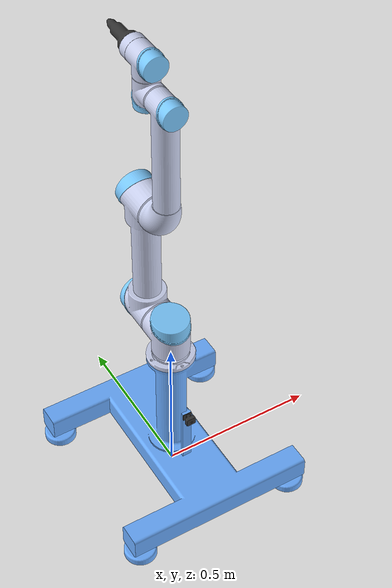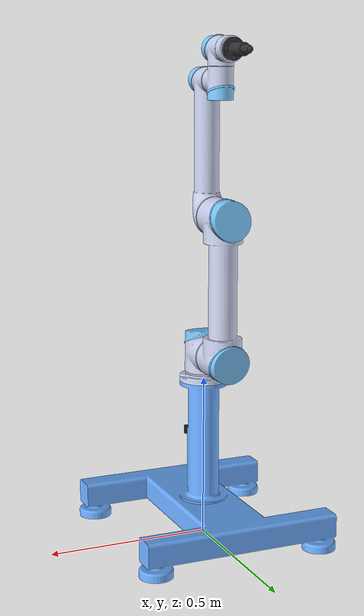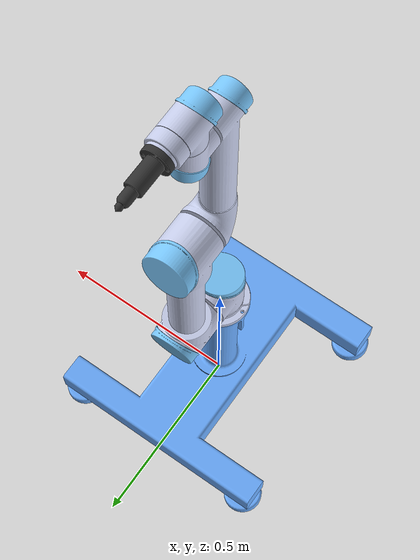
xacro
<?xml version="1.0" ?>
<robot
  name="robot_arm" xmlns:xacro="http://ros.org/wiki/xacro">

  <!-- Gazebo Color Plugins -->
  <xacro:macro name="body_color">
    <visual>
      <material>
        <ambient>0.796078431372549 0.819607843137255 0.933333333333333 1</ambient>
        <diffuse>0.796078431372549 0.819607843137255 0.933333333333333 1</diffuse>
        <specular>0.1 0.1 0.1 1</specular>
        <emissive>0 0 0 0</emissive>
      </material>
    </visual>
  </xacro:macro>
  <xacro:macro name="cap_color">
    <visual>
      <material>
        <ambient>0.482352941176471 0.792156862745098 1 1</ambient>
        <diffuse>0.482352941176471 0.792156862745098 1 1</diffuse>
        <specular>0.1 0.1 0.1 1</specular>
        <emissive>0 0 0 0</emissive>
      </material>
    </visual>
  </xacro:macro>
  <xacro:macro name="base_color">
    <visual>
      <material>
        <ambient>0.41569 0.67451 1 1</ambient>
        <diffuse>0.41569 0.67451 1 1</diffuse>
        <specular>0.1 0.1 0.1 1</specular>
        <emissive>0 0 0 0</emissive>
      </material>
    </visual>
  </xacro:macro>
  <xacro:macro name="tool_color">
    <visual>
      <material>
        <ambient>0.19608 0.19608 0.19608 1</ambient>
        <diffuse>0.19608 0.19608 0.19608 1</diffuse>
        <specular>0.1 0.1 0.1 1</specular>
        <emissive>0 0 0 0</emissive>
      </material>
    </visual>
  </xacro:macro>

  <!-- World Link for Fixed Base -->
  <link name="world" />

  <link
    name="base_link">
    <inertial>
      <origin
        xyz="2.9549E-17 -0.00030197 0.11134"
        rpy="0 0 0" />
      <mass
        value="17.843" />
      <inertia
        ixx="0.87104"
        ixy="-3.2142E-07"
        ixz="-9.442E-18"
        iyy="0.48766"
        iyz="0.00055476"
        izz="0.98951" />
    </inertial>
    <visual>
      <origin
        xyz="0 0 0"
        rpy="0 0 0" />
      <geometry>
        <mesh
          filename="package://project_two/meshes/base_link.STL" />
      </geometry>
      <material
        name="">
        <color
          rgba="0.41569 0.67451 1 1" />
      </material>
    </visual>
    <collision>
      <origin
        xyz="0 0 0"
        rpy="0 0 0" />
      <geometry>
        <mesh
          filename="package://project_two/meshes/base_link.STL" />
      </geometry>
    </collision>
  </link>

  <!-- World Joint For Fixed Base -->
  <joint name="fixed_base" type="fixed">
    <parent link="world" />
    <child link="base_link" />
  </joint>

  <joint
    name="camera_joint"
    type="fixed">
    <origin
      xyz="0 -0.120050000000001 0.2983"
      rpy="1.5707963267949 0 0" />
    <parent
      link="base_link" />
    <child
      link="camera_link" />
    <axis
      xyz="0 0 0" />
  </joint>

  <link
    name="camera_link">
    <inertial>
      <origin
        xyz="-3.8492E-19 0.0043066 -0.0086877"
        rpy="0 0 0" />
      <mass
        value="0.011" />
      <inertia
        ixx="1.206E-06"
        ixy="1.0009E-22"
        ixz="-5.0667E-23"
        iyy="1.4269E-06"
        iyz="8.5819E-08"
        izz="1.3248E-06" />
    </inertial>
    <visual>
      <origin
        xyz="0 0 0"
        rpy="0 0 0" />
      <geometry>
        <mesh
          filename="package://project_two/meshes/camera_link.STL" />
      </geometry>
      <material
        name="">
        <color
          rgba="0.19608 0.19608 0.19608 1" />
      </material>
    </visual>
    <collision>
      <origin
        xyz="0 0 0"
        rpy="0 0 0" />
      <geometry>
        <mesh
          filename="package://project_two/meshes/camera_link.STL" />
      </geometry>
    </collision>
  </link>

  <!-- Dummy link to correct Image Reference Frame for Camera -->
  <link name="camera_link_optical" />
  <joint name="camera_optical_joint" type="fixed">
      <origin xyz="0 0 0" rpy="0 -1.5707 -1.5707963267949" />
      <parent link="camera_link" />
      <child link="camera_link_optical" />
  </joint>

  <link
    name="link_0">
    <inertial>
      <origin
        xyz="0.00081893 -0.00081893 0.50768"
        rpy="0 0 0" />
      <mass
        value="0.36506" />
      <inertia
        ixx="0.00051381"
        ixy="-1.2538E-05"
        ixz="3.4706E-08"
        iyy="0.00051381"
        iyz="-3.4708E-08"
        izz="0.00083314" />
    </inertial>
    <visual>
      <origin
        xyz="0 0 0"
        rpy="0 0 0" />
      <geometry>
        <mesh
          filename="package://project_two/meshes/link_0.STL" />
      </geometry>
      <material
        name="">
        <color
          rgba="0.79216 0.81961 0.93333 1" />
      </material>
    </visual>
    <collision>
      <origin
        xyz="0 0 0"
        rpy="0 0 0" />
      <geometry>
        <mesh
          filename="package://project_two/meshes/link_0.STL" />
      </geometry>
    </collision>
  </link>
  <joint
    name="joint_0"
    type="fixed">
    <origin
      xyz="0 0 0"
      rpy="0 0 0" />
    <parent
      link="base_link" />
    <child
      link="link_0" />
    <axis
      xyz="0 0 0" />
  </joint>
  <link
    name="link_1">
    <inertial>
      <origin
        xyz="-1.7916E-08 0.014728 0.57467"
        rpy="0 0 0" />
      <mass
        value="1.2175" />
      <inertia
        ixx="0.0025526"
        ixy="5.0045E-09"
        ixz="5.1533E-10"
        iyy="0.002109"
        iyz="-0.00029785"
        izz="0.0026631" />
    </inertial>
    <visual>
      <origin
        xyz="0 0 0"
        rpy="0 0 0" />
      <geometry>
        <mesh
          filename="package://project_two/meshes/link_1.STL" />
      </geometry>
      <material
        name="">
        <color
          rgba="0.79608 0.81961 0.93333 1" />
      </material>
    </visual>
    <collision>
      <origin
        xyz="0 0 0"
        rpy="0 0 0" />
      <geometry>
        <mesh
          filename="package://project_two/meshes/link_1.STL" />
      </geometry>
    </collision>
  </link>
  <joint
    name="joint_1"
    type="revolute">
    <origin
      xyz="0 0 0"
      rpy="0 0 0" />
    <parent
      link="link_0" />
    <child
      link="link_1" />
    <axis
      xyz="0 0 1" />
    <limit
      lower="-3.1416"
      upper="3.1416"
      effort="0"
      velocity="0" />

      <!-- Added Joint Dynamics to Prevent Separation -->
      <dynamics damping="0.7" friction="1.0"/>

  </joint>
  <link
    name="link_1_cap">
    <inertial>
      <origin
        xyz="1.423E-07 -0.0080668 0.63232"
        rpy="0 0 0" />
      <mass
        value="0.33002" />
      <inertia
        ixx="0.00031386"
        ixy="1.3984E-09"
        ixz="2.283E-10"
        iyy="0.00033534"
        iyz="-7.3964E-05"
        izz="0.00054175" />
    </inertial>
    <visual>
      <origin
        xyz="0 0 0"
        rpy="0 0 0" />
      <geometry>
        <mesh
          filename="package://project_two/meshes/link_1_cap.STL" />
      </geometry>
      <material
        name="">
        <color
          rgba="0.48235 0.79216 1 1" />
      </material>
    </visual>
    <collision>
      <origin
        xyz="0 0 0"
        rpy="0 0 0" />
      <geometry>
        <mesh
          filename="package://project_two/meshes/link_1_cap.STL" />
      </geometry>
    </collision>
  </link>
  <joint
    name="link_1_cap_joint"
    type="prismatic">
    <origin
      xyz="0 0 0"
      rpy="0 0 0" />
    <parent
      link="link_1" />
    <child
      link="link_1_cap" />
    <axis
      xyz="0 0 1" />
    <limit
      lower="0"
      upper="0"
      effort="0"
      velocity="0" />
  </joint>
  <link
    name="link_2">
    <inertial>
      <origin
        xyz="5.2822E-09 -0.21211 0.12961"
        rpy="0 0 0" />
      <mass
        value="4.0348" />
      <inertia
        ixx="0.112"
        ixy="1.4951E-08"
        ixz="-4.4437E-10"
        iyy="0.0058097"
        iyz="1.8719E-05"
        izz="0.11215" />
    </inertial>
    <visual>
      <origin
        xyz="0 0 0"
        rpy="0 0 0" />
      <geometry>
        <mesh
          filename="package://project_two/meshes/link_2.STL" />
      </geometry>
      <material
        name="">
        <color
          rgba="0.79216 0.81961 0.93333 1" />
      </material>
    </visual>
    <collision>
      <origin
        xyz="0 0 0"
        rpy="0 0 0" />
      <geometry>
        <mesh
          filename="package://project_two/meshes/link_2.STL" />
      </geometry>
    </collision>
  </link>
  <joint
    name="joint_2"
    type="revolute">
    <origin
      xyz="0 0 0.58365"
      rpy="-1.57079632679489 0 0" />
    <parent
      link="link_1" />
    <child
      link="link_2" />
    <axis
      xyz="0 0 1" />
    <limit
      lower="-3.1416"
      upper="3.1416"
      effort="0"
      velocity="0" />

      <!-- Added Joint Dynamics to Prevent Separation -->
      <dynamics damping="0.7" friction="1.0"/>
  </joint>
  <link
    name="link_2_cap_1">
    <inertial>
      <origin
        xyz="-1.423E-07 0.0080668 0.18367"
        rpy="0 0 0" />
      <mass
        value="0.33002" />
      <inertia
        ixx="0.00031386"
        ixy="1.3984E-09"
        ixz="-2.283E-10"
        iyy="0.00033534"
        iyz="7.3964E-05"
        izz="0.00054175" />
    </inertial>
    <visual>
      <origin
        xyz="0 0 0"
        rpy="0 0 0" />
      <geometry>
        <mesh
          filename="package://project_two/meshes/link_2_cap_1.STL" />
      </geometry>
      <material
        name="">
        <color
          rgba="0.48235 0.79216 1 1" />
      </material>
    </visual>
    <collision>
      <origin
        xyz="0 0 0"
        rpy="0 0 0" />
      <geometry>
        <mesh
          filename="package://project_two/meshes/link_2_cap_1.STL" />
      </geometry>
    </collision>
  </link>
  <joint
    name="link_2_cap_1_joint"
    type="prismatic">
    <origin
      xyz="0 0 0"
      rpy="0 0 0" />
    <parent
      link="link_2" />
    <child
      link="link_2_cap_1" />
    <axis
      xyz="0 0 1" />
    <limit
      lower="0"
      upper="0"
      effort="0"
      velocity="0" />
  </joint>
  <link
    name="link_2_cap_2">
    <inertial>
      <origin
        xyz="1.423E-07 -0.43307 0.18367"
        rpy="0 0 0" />
      <mass
        value="0.33002" />
      <inertia
        ixx="0.00031386"
        ixy="1.3984E-09"
        ixz="2.283E-10"
        iyy="0.00033534"
        iyz="-7.3964E-05"
        izz="0.00054175" />
    </inertial>
    <visual>
      <origin
        xyz="0 0 0"
        rpy="0 0 0" />
      <geometry>
        <mesh
          filename="package://project_two/meshes/link_2_cap_2.STL" />
      </geometry>
      <material
        name="">
        <color
          rgba="0.48235 0.79216 1 1" />
      </material>
    </visual>
    <collision>
      <origin
        xyz="0 0 0"
        rpy="0 0 0" />
      <geometry>
        <mesh
          filename="package://project_two/meshes/link_2_cap_2.STL" />
      </geometry>
    </collision>
  </link>
  <joint
    name="link_2_cap_2_joint"
    type="prismatic">
    <origin
      xyz="0 0 0"
      rpy="0 0 0" />
    <parent
      link="link_2" />
    <child
      link="link_2_cap_2" />
    <axis
      xyz="0 0 1" />
    <limit
      lower="0"
      upper="0"
      effort="0"
      velocity="0" />
  </joint>
  <link
    name="link_3">
    <inertial>
      <origin
        xyz="0.17074 -3.2584E-08 0.022462"
        rpy="0 0 0" />
      <mass
        value="2.3274" />
      <inertia
        ixx="0.0023075"
        ixy="3.4208E-08"
        ixz="0.0019995"
        iyy="0.046499"
        iyz="-6.3253E-10"
        izz="0.046263" />
    </inertial>
    <visual>
      <origin
        xyz="0 0 0"
        rpy="0 0 0" />
      <geometry>
        <mesh
          filename="package://project_two/meshes/link_3.STL" />
      </geometry>
      <material
        name="">
        <color
          rgba="0.78824 0.81961 0.93333 1" />
      </material>
    </visual>
    <collision>
      <origin
        xyz="0 0 0"
        rpy="0 0 0" />
      <geometry>
        <mesh
          filename="package://project_two/meshes/link_3.STL" />
      </geometry>
    </collision>
  </link>
  <joint
    name="joint_3"
    type="revolute">
    <origin
      xyz="0 -0.425 0"
      rpy="0 0 -1.5707963267949" />
    <parent
      link="link_2" />
    <child
      link="link_3" />
    <axis
      xyz="0 0 1" />
    <limit
      lower="-3.1416"
      upper="3.1416"
      effort="0"
      velocity="0" />

      <!-- Added Joint Dynamics to Prevent Separation -->
      <dynamics damping="0.7" friction="1.0"/>
  </joint>
  <link
    name="link_3_cap">
    <inertial>
      <origin
        xyz="0.39703 4.2245E-09 -0.022435"
        rpy="0 0 0" />
      <mass
        value="0.12996" />
      <inertia
        ixx="6.0021E-05"
        ixy="-3.0376E-11"
        ixz="-9.2342E-06"
        iyy="5.7055E-05"
        iyz="-1.9065E-11"
        izz="9.14E-05" />
    </inertial>
    <visual>
      <origin
        xyz="0 0 0"
        rpy="0 0 0" />
      <geometry>
        <mesh
          filename="package://project_two/meshes/link_3_cap.STL" />
      </geometry>
      <material
        name="">
        <color
          rgba="0.48235 0.79216 1 1" />
      </material>
    </visual>
    <collision>
      <origin
        xyz="0 0 0"
        rpy="0 0 0" />
      <geometry>
        <mesh
          filename="package://project_two/meshes/link_3_cap.STL" />
      </geometry>
    </collision>
  </link>
  <joint
    name="link_3_cap_joint"
    type="prismatic">
    <origin
      xyz="0 0 0"
      rpy="0 0 0" />
    <parent
      link="link_3" />
    <child
      link="link_3_cap" />
    <axis
      xyz="0 0 1" />
    <limit
      lower="0"
      upper="0"
      effort="0"
      velocity="0" />
  </joint>
  <link
    name="link_4">
    <inertial>
      <origin
        xyz="0.006251 2.0887E-08 0.09948"
        rpy="0 0 0" />
      <mass
        value="0.3614" />
      <inertia
        ixx="0.00034642"
        ixy="1.8174E-10"
        ixz="-3.8889E-05"
        iyy="0.00034738"
        iyz="-4.5309E-10"
        izz="0.00027444" />
    </inertial>
    <visual>
      <origin
        xyz="0 0 0"
        rpy="0 0 0" />
      <geometry>
        <mesh
          filename="package://project_two/meshes/link_4.STL" />
      </geometry>
      <material
        name="">
        <color
          rgba="0.79608 0.81961 0.93333 1" />
      </material>
    </visual>
    <collision>
      <origin
        xyz="0 0 0"
        rpy="0 0 0" />
      <geometry>
        <mesh
          filename="package://project_two/meshes/link_4.STL" />
      </geometry>
    </collision>
  </link>
  <joint
    name="joint_4"
    type="revolute">
    <origin
      xyz="0.39225 0 0"
      rpy="0 0 0" />
    <parent
      link="link_3" />
    <child
      link="link_4" />
    <axis
      xyz="0 0 -1" />
    <limit
      lower="-3.1416"
      upper="3.1416"
      effort="0"
      velocity="0" />

      <!-- Added Joint Dynamics to Prevent Separation -->
      <dynamics damping="0.7" friction="1.0"/>
  </joint>
  <link
    name="link_4_cap">
    <inertial>
      <origin
        xyz="-0.037685 -4.2245E-09 0.11468"
        rpy="0 0 0" />
      <mass
        value="0.12996" />
      <inertia
        ixx="9.14E-05"
        ixy="1.9065E-11"
        ixz="-9.2342E-06"
        iyy="5.7055E-05"
        iyz="3.0376E-11"
        izz="6.0021E-05" />
    </inertial>
    <visual>
      <origin
        xyz="0 0 0"
        rpy="0 0 0" />
      <geometry>
        <mesh
          filename="package://project_two/meshes/link_4_cap.STL" />
      </geometry>
      <material
        name="">
        <color
          rgba="0.48235 0.79216 1 1" />
      </material>
    </visual>
    <collision>
      <origin
        xyz="0 0 0"
        rpy="0 0 0" />
      <geometry>
        <mesh
          filename="package://project_two/meshes/link_4_cap.STL" />
      </geometry>
    </collision>
  </link>
  <joint
    name="link_4_cap_joint"
    type="prismatic">
    <origin
      xyz="0 0 0"
      rpy="0 0 0" />
    <parent
      link="link_4" />
    <child
      link="link_4_cap" />
    <axis
      xyz="0 0 -1" />
    <limit
      lower="0"
      upper="0"
      effort="0"
      velocity="0" />
  </joint>
  <link
    name="link_5">
    <inertial>
      <origin
        xyz="-2.0887E-08 0.006251 0.08023"
        rpy="0 0 0" />
      <mass
        value="0.3614" />
      <inertia
        ixx="0.00034738"
        ixy="-1.8174E-10"
        ixz="4.5309E-10"
        iyy="0.00034642"
        iyz="-3.8889E-05"
        izz="0.00027444" />
    </inertial>
    <visual>
      <origin
        xyz="0 0 0"
        rpy="0 0 0" />
      <geometry>
        <mesh
          filename="package://project_two/meshes/link_5.STL" />
      </geometry>
      <material
        name="">
        <color
          rgba="0.79216 0.81961 0.93333 1" />
      </material>
    </visual>
    <collision>
      <origin
        xyz="0 0 0"
        rpy="0 0 0" />
      <geometry>
        <mesh
          filename="package://project_two/meshes/link_5.STL" />
      </geometry>
    </collision>
  </link>
  <joint
    name="joint_5"
    type="revolute">
    <origin
      xyz="0 0 0.1099"
      rpy="1.5707963267949 0 1.5707963267949" />
    <parent
      link="link_4" />
    <child
      link="link_5" />
    <axis
      xyz="0 0 -1" />
    <limit
      lower="-3.1416"
      upper="3.1416"
      effort="0"
      velocity="0" />

      <!-- Added Joint Dynamics to Prevent Separation -->
      <dynamics damping="0.7" friction="1.0"/>
  </joint>
  <link
    name="link_5_cap">
    <inertial>
      <origin
        xyz="4.2245E-09 -0.037685 0.095428"
        rpy="0 0 0" />
      <mass
        value="0.12996" />
      <inertia
        ixx="5.7055E-05"
        ixy="-1.9065E-11"
        ixz="-3.0376E-11"
        iyy="9.14E-05"
        iyz="-9.2342E-06"
        izz="6.0021E-05" />
    </inertial>
    <visual>
      <origin
        xyz="0 0 0"
        rpy="0 0 0" />
      <geometry>
        <mesh
          filename="package://project_two/meshes/link_5_cap.STL" />
      </geometry>
      <material
        name="">
        <color
          rgba="0.48235 0.79216 1 1" />
      </material>
    </visual>
    <collision>
      <origin
        xyz="0 0 0"
        rpy="0 0 0" />
      <geometry>
        <mesh
          filename="package://project_two/meshes/link_5_cap.STL" />
      </geometry>
    </collision>
  </link>
  <joint
    name="link_5_cap_joint"
    type="prismatic">
    <origin
      xyz="0 0 0"
      rpy="0 0 0" />
    <parent
      link="link_5" />
    <child
      link="link_5_cap" />
    <axis
      xyz="0 0 -1" />
    <limit
      lower="0"
      upper="0"
      effort="0"
      velocity="0" />
  </joint>
  <link
    name="link_6">
    <inertial>
      <origin
        xyz="-7.1229E-16 2.2204E-16 0.056331"
        rpy="0 0 0" />
      <mass
        value="0.14829" />
      <inertia
        ixx="7.7118E-05"
        ixy="-1.9478E-22"
        ixz="4.0506E-22"
        iyy="7.7118E-05"
        iyz="-3.0608E-20"
        izz="9.8191E-05" />
    </inertial>
    <visual>
      <origin
        xyz="0 0 0"
        rpy="0 0 0" />
      <geometry>
        <mesh
          filename="package://project_two/meshes/link_6.STL" />
      </geometry>
      <material
        name="">
        <color
          rgba="0.79216 0.81961 0.93333 1" />
      </material>
    </visual>
    <collision>
      <origin
        xyz="0 0 0"
        rpy="0 0 0" />
      <geometry>
        <mesh
          filename="package://project_two/meshes/link_6.STL" />
      </geometry>
    </collision>
  </link>
  <joint
    name="joint_6"
    type="revolute">
    <origin
      xyz="0 0 0.0906500000000001"
      rpy="-1.5707963267949 0 0" />
    <parent
      link="link_5" />
    <child
      link="link_6" />
    <axis
      xyz="0 0 -1" />
    <limit
      lower="-3.1416"
      upper="3.1416"
      effort="0"
      velocity="0" />

      <!-- Added Joint Dynamics to Prevent Separation -->
      <dynamics damping="0.7" friction="1.0"/>
  </joint>
  <link
    name="tooling_link">
    <inertial>
      <origin
        xyz="-1.5989E-18 2.2204E-16 -0.082843"
        rpy="0 0 0" />
      <mass
        value="0.12635" />
      <inertia
        ixx="0.0001347"
        ixy="8.3207E-21"
        ixz="1.1338E-20"
        iyy="0.0001347"
        iyz="-8.3871E-20"
        izz="3.2352E-05" />
    </inertial>
    <visual>
      <origin
        xyz="0 0 0"
        rpy="0 0 0" />
      <geometry>
        <mesh
          filename="package://project_two/meshes/tooling_link.STL" />
      </geometry>
      <material
        name="">
        <color
          rgba="0.19608 0.19608 0.19608 1" />
      </material>
    </visual>
    <collision>
      <origin
        xyz="0 0 0"
        rpy="0 0 0" />
      <geometry>
        <mesh
          filename="package://project_two/meshes/tooling_link.STL" />
      </geometry>
    </collision>
  </link>
  <joint
    name="tooling_joint"
    type="prismatic">
    <origin
      xyz="0 0 0.2002"
      rpy="0 0 0" />
    <parent
      link="link_6" />
    <child
      link="tooling_link" />
    <axis
      xyz="0 0 -1" />
    <limit
      lower="0"
      upper="0"
      effort="0"
      velocity="0" />
  </joint>

  <!-- Gazebo Color Plugins -->
  <gazebo reference="base_link">
    <xacro:base_color />
  </gazebo>
  <gazebo reference="link_0">
    <xacro:body_color />
  </gazebo>
  <gazebo reference="link_1">
    <xacro:body_color />
  </gazebo>
  <gazebo reference="link_2">
    <xacro:body_color />
  </gazebo>
  <gazebo reference="link_3">
    <xacro:body_color />
  </gazebo>
  <gazebo reference="link_4">
    <xacro:body_color />
  </gazebo>
  <gazebo reference="link_5">
    <xacro:body_color />
  </gazebo>
  <gazebo reference="link_6">
    <xacro:body_color />
  </gazebo>
  <gazebo reference="link_1_cap">
    <xacro:cap_color />
  </gazebo>
  <gazebo reference="link_2_cap_1">
    <xacro:cap_color />
  </gazebo>
  <gazebo reference="link_2_cap_2">
    <xacro:cap_color />
  </gazebo>
  <gazebo reference="link_3_cap">
    <xacro:cap_color />
  </gazebo>
  <gazebo reference="link_4_cap">
    <xacro:cap_color />
  </gazebo>
  <gazebo reference="link_5_cap">
    <xacro:cap_color />
  </gazebo>
  <gazebo reference="camera_link">
    <xacro:tool_color />
  </gazebo>
  <gazebo reference="tooling_link">
    <xacro:tool_color />
  </gazebo>

  <!-- Gazebo Controller Plugin -->
  <ros2_control name="GazeboSystem" type="system">
    <hardware>
      <plugin>gazebo_ros2_control/GazeboSystem</plugin>
    </hardware>
    <joint name="joint_1">
        <command_interface name="position">
            <param name="min">-3.14</param>
            <param name="max">3.14</param>
        </command_interface>
        <state_interface name="position"/>
    </joint>
    <joint name="joint_2">
        <command_interface name="position">
            <param name="min">-3.14</param>
            <param name="max">3.14</param>
        </command_interface>
        <state_interface name="position"/>
    </joint>
    <joint name="joint_3">
        <command_interface name="position">
            <param name="min">-3.14</param>
            <param name="max">3.14</param>
        </command_interface>
        <state_interface name="position"/>
    </joint>
    <joint name="joint_4">
        <command_interface name="position">
            <param name="min">-3.14</param>
            <param name="max">3.14</param>
        </command_interface>
        <state_interface name="position"/>
    </joint>
    <joint name="joint_5">
        <command_interface name="position">
            <param name="min">-3.14</param>
            <param name="max">3.14</param>
        </command_interface>
        <state_interface name="position"/>
    </joint>
    <joint name="joint_6">
        <command_interface name="position">
            <param name="min">-3.14</param>
            <param name="max">3.14</param>
        </command_interface>
        <state_interface name="position"/>
    </joint>

    <!-- Dummy Controller for Link Cap joints to instantiate in Rviz -->
    <joint name="link_1_cap_joint">
        <command_interface name="position"/>
        <state_interface name="position"/>
    </joint>
    <joint name="link_3_cap_joint">
        <command_interface name="position"/>
        <state_interface name="position"/>
    </joint>
    <joint name="link_4_cap_joint">
        <command_interface name="position"/>
        <state_interface name="position"/>
    </joint>
    <joint name="link_5_cap_joint">
        <command_interface name="position"/>
        <state_interface name="position"/>
    </joint>
    <joint name="tooling_joint">
        <command_interface name="position"/>
        <state_interface name="position"/>
    </joint>
    <joint name="link_2_cap_2_joint">
        <command_interface name="position"/>
        <state_interface name="position"/>
    </joint>
    <joint name="link_2_cap_1_joint">
        <command_interface name="position"/>
        <state_interface name="position"/>
    </joint>

  </ros2_control>

  <!-- Control Configuration File -->
  <gazebo>
    <plugin filename="libgazebo_ros2_control.so" name="gazebo_ros2_control">
      <parameters>$(find project_two)/config/control.yaml</parameters>
    </plugin>
  </gazebo>

  <!-- Joint Dynamics Plugins to Prevent Joint Separation -->
  <gazebo reference="joint_1">
    <implicitSpringDamper>true</implicitSpringDamper>
  </gazebo>
  <gazebo reference="joint_2">
    <implicitSpringDamper>true</implicitSpringDamper>
  </gazebo>
  <gazebo reference="joint_3">
    <implicitSpringDamper>true</implicitSpringDamper>
  </gazebo>
  <gazebo reference="joint_4">
    <implicitSpringDamper>true</implicitSpringDamper>
  </gazebo>
  <gazebo reference="joint_5">
    <implicitSpringDamper>true</implicitSpringDamper>
  </gazebo>
  <gazebo reference="joint_6">
    <implicitSpringDamper>true</implicitSpringDamper>
  </gazebo>

  <!-- Camera Sensor -->

  <gazebo reference="camera_link_optical">
    <sensor name="camera" type="camera">
      <pose> 0 0 0 0 0 0</pose>
      <visualize>true</visualize>
      <update_rate>10</update_rate>
      <camera>
        <horizontal_fov>1.089</horizontal_fov>
        <image>
            <format>R8G8B8</format>
            <width>640</width>
            <height>480</height>
        </image>
        <clip>
            <near>0.05</near>
            <far>20</far>
        </clip>
      </camera>

      <plugin name="camera_controller" filename="libgazebo_ros_camera.so">
        <always_on>true</always_on>
        <cameraName>camera</cameraName>
        <imageTopicName>image_raw</imageTopicName>
        <cameraInfoTopicName>camera_info</cameraInfoTopicName>
        <frame_name>camera_link_optical</frame_name>
      </plugin>
    </sensor>
  </gazebo>

</robot>
